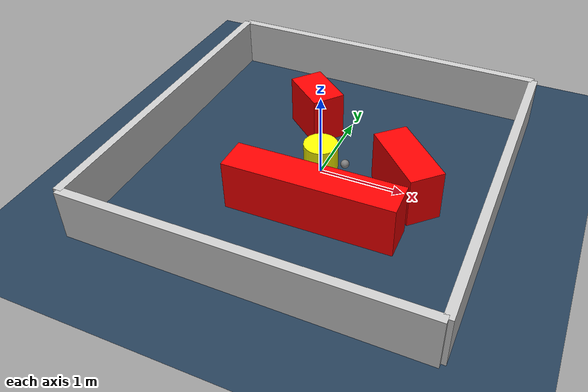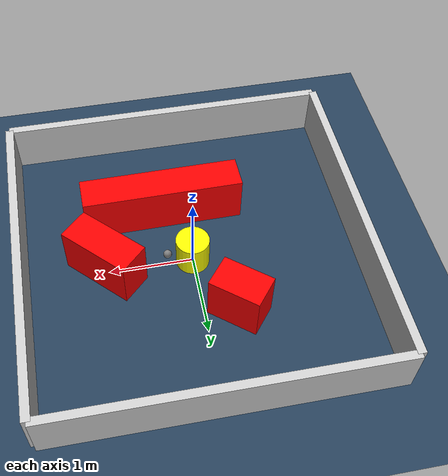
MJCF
<?xml version="1.0" ?>
<mujoco model="generated_environment">
  <option timestep="0.01" integrator="RK4" cone="elliptic"/>
  <default>
    <geom density="1"/>
  </default>
  <asset>
    <texture builtin="gradient" height="3072" rgb1="0.3 0.5 0.7" rgb2="0 0 0" type="skybox" width="512"/>
    <texture builtin="checker" height="300" mark="edge" markrgb="0.8 0.8 0.8" name="groundplane" rgb1="0.2 0.3 0.4" rgb2="0.1 0.2 0.3" type="2d" width="300"/>
    <material name="groundplane" reflectance="0.2" texrepeat="5 5" texture="groundplane" texuniform="true"/>
    <material name="robot" rgba="0.0 1.0 0.0 1"/>
  </asset>
  <worldbody>
    <light dir="0 0 -1" directional="true" pos="0 0 1.5"/>
    <geom condim="4" friction="1.0 0.005 0.001" material="groundplane" name="floor" size="0 0 0.05" type="plane"/>
    <body name="walls">
      <geom name="wall_1" condim="4" pos="-2.0 0.0 0.3" rgba="0.800000011920929 0.800000011920929 0.800000011920929 1.0" size="0.05 2.0 0.3" type="box"/>
      <geom name="wall_2" condim="4" pos="2.0 0.0 0.3" rgba="0.800000011920929 0.800000011920929 0.800000011920929 1.0" size="0.05 2.0 0.3" type="box"/>
      <geom name="wall_3" condim="4" pos="0.0 -2.0 0.3" rgba="0.800000011920929 0.800000011920929 0.800000011920929 1.0" size="2.0 0.05 0.3" type="box"/>
      <geom name="wall_4" condim="4" pos="0.0 2.0 0.3" rgba="0.800000011920929 0.800000011920929 0.800000011920929 1.0" size="2.0 0.05 0.3" type="box"/>
    </body>
    <body name="robot">
      <joint name="joint_x" type="slide" pos="0 0 0" axis="1 0 0"/>
      <joint name="joint_y" type="slide" pos="0 0 0" axis="0 1 0"/>
      <geom name="robot" type="sphere" pos="0.3 0.0 0.2" size="0.05" mass="5." friction="1.0 0.005 0.0001" condim="4" rgba="0.5 0.5 0.5 1.0"/>
      <site name="sensor_ball"/>
    </body>
    <body name="obstacle_movable_1">
      <geom name="obstacle_movable_1" condim="4" pos="0.0 0.0 0.2" euler="0 0 0.0" friction="1.0 0.005 0.001" rgba="1.0 1.0 0.0 1.0" size="0.2 0.2 0.0" type="cylinder" mass="0.1"/>
      <joint type="free"/>
    </body>
    <body name="obstacle_2_static">
      <geom name="obstacle_2_static" condim="4" pos="0.2441549025135521 -0.7739027502816269 0.3" euler="0 0 0.5969130843397252" friction="1.0 0.005 0.001" rgba="1 0 0 1" size="0.9626683518986023 0.2 0.3" type="box"/>
    </body>
    <body name="obstacle_3_static">
      <geom name="obstacle_3_static" condim="4" pos="1.0294231217843877 -0.02478130629706987 0.3" euler="0 0 134.53384961017022" friction="1.0 0.005 0.001" rgba="1 0 0 1" size="0.4473671183296129 0.2 0.3" type="box"/>
    </body>
    <body name="obstacle_4_static">
      <geom name="obstacle_4_static" condim="4" pos="-0.3945283595256639 0.7962286535694163 0.3" euler="0 0 140.8924413286081" friction="1.0 0.005 0.001" rgba="1 0 0 1" size="0.3089343944332422 0.2 0.3" type="box"/>
    </body>
  </worldbody>
  <actuator>
    <motor name="actuator_x" joint="joint_x" gear="1" ctrlrange="-1 1"/>
    <motor name="actuator_y" joint="joint_y" gear="1" ctrlrange="-1 1"/>
  </actuator>
</mujoco>
